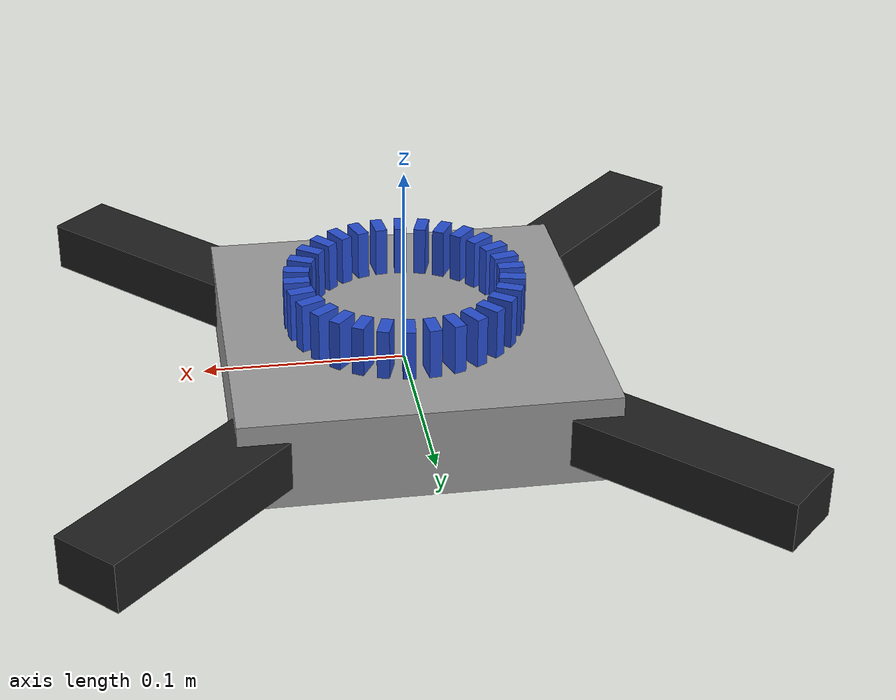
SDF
<?xml version="1.0" ?>

<sdf version="1.5">
  <model name="pendulum_quadcopter_platform">
    <link name="platform_base">
      <pose>0 0 0 0 0 0</pose>
      <inertial>
        <pose>0 0 0 0 0 0</pose>
        <mass>1.1</mass>
        <inertia>
          <ixx>0.018</ixx>
          <iyy>0.018</iyy>
          <izz>0.032</izz>
          <ixy>0</ixy>
          <ixz>0</ixz>
          <iyz>0</iyz>
        </inertia>
      </inertial>

      <collision name="body_collision">
        <pose>0 0 0 0 0 0</pose>
        <geometry>
          <box>
            <size>0.18 0.18 0.045</size>
          </box>
        </geometry>
        <surface>
          <contact>
            <ode>
              <max_vel>100.0</max_vel>
              <min_depth>0.001</min_depth>
            </ode>
          </contact>
          <friction>
            <ode>
              <mu>100000.0</mu>
              <mu2>100000.0</mu2>
            </ode>
          </friction>
        </surface>
      </collision>
      <visual name="body_visual">
        <pose>0 0 0 0 0 0</pose>
        <geometry>
          <box>
            <size>0.18 0.18 0.045</size>
          </box>
        </geometry>
        <material>
          <script>
            <name>Gazebo/Grey</name>
          </script>
        </material>
      </visual>

      <collision name="arm_positive_collision">
        <pose>0 0 0 0 0 0.7853981633974483</pose>
        <geometry>
          <box>
            <size>0.45 0.035 0.025</size>
          </box>
        </geometry>
      </collision>
      <visual name="arm_positive_visual">
        <pose>0 0 0 0 0 0.7853981633974483</pose>
        <geometry>
          <box>
            <size>0.45 0.035 0.025</size>
          </box>
        </geometry>
        <material>
          <script>
            <name>Gazebo/Black</name>
          </script>
        </material>
      </visual>

      <collision name="arm_negative_collision">
        <pose>0 0 0 0 0 -0.7853981633974483</pose>
        <geometry>
          <box>
            <size>0.45 0.035 0.025</size>
          </box>
        </geometry>
      </collision>
      <visual name="arm_negative_visual">
        <pose>0 0 0 0 0 -0.7853981633974483</pose>
        <geometry>
          <box>
            <size>0.45 0.035 0.025</size>
          </box>
        </geometry>
        <material>
          <script>
            <name>Gazebo/Black</name>
          </script>
        </material>
      </visual>

      <collision name="pendulum_cup_collision_0">
        <pose>0.053000000000000005 0.0 0.035 0 0 0.0</pose>
        <geometry>
          <box>
            <size>0.012765338149086527 0.006 0.025</size>
          </box>
        </geometry>
        <surface>
          <contact>
            <ode>
              <max_vel>100.0</max_vel>
              <min_depth>0.001</min_depth>
            </ode>
          </contact>
          <friction>
            <ode>
              <mu>10.0</mu>
              <mu2>10.0</mu2>
            </ode>
          </friction>
        </surface>
      </collision>
      <visual name="pendulum_cup_visual_0">
        <pose>0.053000000000000005 0.0 0.035 0 0 0.0</pose>
        <geometry>
          <box>
            <size>0.012765338149086527 0.006 0.025</size>
          </box>
        </geometry>
        <material>
          <script>
            <name>Gazebo/Blue</name>
          </script>
        </material>
      </visual>

      <collision name="pendulum_cup_collision_1">
        <pose>0.05184182283889171 0.011019319613341245 0.035 0 0 0.20943951023931953</pose>
        <geometry>
          <box>
            <size>0.012765338149086527 0.006 0.025</size>
          </box>
        </geometry>
        <surface>
          <contact>
            <ode>
              <max_vel>100.0</max_vel>
              <min_depth>0.001</min_depth>
            </ode>
          </contact>
          <friction>
            <ode>
              <mu>10.0</mu>
              <mu2>10.0</mu2>
            </ode>
          </friction>
        </surface>
      </collision>
      <visual name="pendulum_cup_visual_1">
        <pose>0.05184182283889171 0.011019319613341245 0.035 0 0 0.20943951023931953</pose>
        <geometry>
          <box>
            <size>0.012765338149086527 0.006 0.025</size>
          </box>
        </geometry>
        <material>
          <script>
            <name>Gazebo/Blue</name>
          </script>
        </material>
      </visual>

      <collision name="pendulum_cup_collision_2">
        <pose>0.04841790925505785 0.02155704208301741 0.035 0 0 0.41887902047863906</pose>
        <geometry>
          <box>
            <size>0.012765338149086527 0.006 0.025</size>
          </box>
        </geometry>
        <surface>
          <contact>
            <ode>
              <max_vel>100.0</max_vel>
              <min_depth>0.001</min_depth>
            </ode>
          </contact>
          <friction>
            <ode>
              <mu>10.0</mu>
              <mu2>10.0</mu2>
            </ode>
          </friction>
        </surface>
      </collision>
      <visual name="pendulum_cup_visual_2">
        <pose>0.04841790925505785 0.02155704208301741 0.035 0 0 0.41887902047863906</pose>
        <geometry>
          <box>
            <size>0.012765338149086527 0.006 0.025</size>
          </box>
        </geometry>
        <material>
          <script>
            <name>Gazebo/Blue</name>
          </script>
        </material>
      </visual>

      <collision name="pendulum_cup_collision_3">
        <pose>0.04287790070187222 0.03115261837150108 0.035 0 0 0.6283185307179586</pose>
        <geometry>
          <box>
            <size>0.012765338149086527 0.006 0.025</size>
          </box>
        </geometry>
        <surface>
          <contact>
            <ode>
              <max_vel>100.0</max_vel>
              <min_depth>0.001</min_depth>
            </ode>
          </contact>
          <friction>
            <ode>
              <mu>10.0</mu>
              <mu2>10.0</mu2>
            </ode>
          </friction>
        </surface>
      </collision>
      <visual name="pendulum_cup_visual_3">
        <pose>0.04287790070187222 0.03115261837150108 0.035 0 0 0.6283185307179586</pose>
        <geometry>
          <box>
            <size>0.012765338149086527 0.006 0.025</size>
          </box>
        </geometry>
        <material>
          <script>
            <name>Gazebo/Blue</name>
          </script>
        </material>
      </visual>

      <collision name="pendulum_cup_collision_4">
        <pose>0.03546392213701949 0.03938667575030189 0.035 0 0 0.8377580409572781</pose>
        <geometry>
          <box>
            <size>0.012765338149086527 0.006 0.025</size>
          </box>
        </geometry>
        <surface>
          <contact>
            <ode>
              <max_vel>100.0</max_vel>
              <min_depth>0.001</min_depth>
            </ode>
          </contact>
          <friction>
            <ode>
              <mu>10.0</mu>
              <mu2>10.0</mu2>
            </ode>
          </friction>
        </surface>
      </collision>
      <visual name="pendulum_cup_visual_4">
        <pose>0.03546392213701949 0.03938667575030189 0.035 0 0 0.8377580409572781</pose>
        <geometry>
          <box>
            <size>0.012765338149086527 0.006 0.025</size>
          </box>
        </geometry>
        <material>
          <script>
            <name>Gazebo/Blue</name>
          </script>
        </material>
      </visual>

      <collision name="pendulum_cup_collision_5">
        <pose>0.02650000000000001 0.04589934640057525 0.035 0 0 1.0471975511965976</pose>
        <geometry>
          <box>
            <size>0.012765338149086527 0.006 0.025</size>
          </box>
        </geometry>
        <surface>
          <contact>
            <ode>
              <max_vel>100.0</max_vel>
              <min_depth>0.001</min_depth>
            </ode>
          </contact>
          <friction>
            <ode>
              <mu>10.0</mu>
              <mu2>10.0</mu2>
            </ode>
          </friction>
        </surface>
      </collision>
      <visual name="pendulum_cup_visual_5">
        <pose>0.02650000000000001 0.04589934640057525 0.035 0 0 1.0471975511965976</pose>
        <geometry>
          <box>
            <size>0.012765338149086527 0.006 0.025</size>
          </box>
        </geometry>
        <material>
          <script>
            <name>Gazebo/Blue</name>
          </script>
        </material>
      </visual>

      <collision name="pendulum_cup_collision_6">
        <pose>0.016377900701872217 0.050405995363643145 0.035 0 0 1.2566370614359172</pose>
        <geometry>
          <box>
            <size>0.012765338149086527 0.006 0.025</size>
          </box>
        </geometry>
        <surface>
          <contact>
            <ode>
              <max_vel>100.0</max_vel>
              <min_depth>0.001</min_depth>
            </ode>
          </contact>
          <friction>
            <ode>
              <mu>10.0</mu>
              <mu2>10.0</mu2>
            </ode>
          </friction>
        </surface>
      </collision>
      <visual name="pendulum_cup_visual_6">
        <pose>0.016377900701872217 0.050405995363643145 0.035 0 0 1.2566370614359172</pose>
        <geometry>
          <box>
            <size>0.012765338149086527 0.006 0.025</size>
          </box>
        </geometry>
        <material>
          <script>
            <name>Gazebo/Blue</name>
          </script>
        </material>
      </visual>

      <collision name="pendulum_cup_collision_7">
        <pose>0.0055400085531856335 0.05270966045451849 0.035 0 0 1.4660765716752369</pose>
        <geometry>
          <box>
            <size>0.012765338149086527 0.006 0.025</size>
          </box>
        </geometry>
        <surface>
          <contact>
            <ode>
              <max_vel>100.0</max_vel>
              <min_depth>0.001</min_depth>
            </ode>
          </contact>
          <friction>
            <ode>
              <mu>10.0</mu>
              <mu2>10.0</mu2>
            </ode>
          </friction>
        </surface>
      </collision>
      <visual name="pendulum_cup_visual_7">
        <pose>0.0055400085531856335 0.05270966045451849 0.035 0 0 1.4660765716752369</pose>
        <geometry>
          <box>
            <size>0.012765338149086527 0.006 0.025</size>
          </box>
        </geometry>
        <material>
          <script>
            <name>Gazebo/Blue</name>
          </script>
        </material>
      </visual>

      <collision name="pendulum_cup_collision_8">
        <pose>-0.005540008553185627 0.0527096604545185 0.035 0 0 1.6755160819145563</pose>
        <geometry>
          <box>
            <size>0.012765338149086527 0.006 0.025</size>
          </box>
        </geometry>
        <surface>
          <contact>
            <ode>
              <max_vel>100.0</max_vel>
              <min_depth>0.001</min_depth>
            </ode>
          </contact>
          <friction>
            <ode>
              <mu>10.0</mu>
              <mu2>10.0</mu2>
            </ode>
          </friction>
        </surface>
      </collision>
      <visual name="pendulum_cup_visual_8">
        <pose>-0.005540008553185627 0.0527096604545185 0.035 0 0 1.6755160819145563</pose>
        <geometry>
          <box>
            <size>0.012765338149086527 0.006 0.025</size>
          </box>
        </geometry>
        <material>
          <script>
            <name>Gazebo/Blue</name>
          </script>
        </material>
      </visual>

      <collision name="pendulum_cup_collision_9">
        <pose>-0.01637790070187221 0.050405995363643145 0.035 0 0 1.8849555921538759</pose>
        <geometry>
          <box>
            <size>0.012765338149086527 0.006 0.025</size>
          </box>
        </geometry>
        <surface>
          <contact>
            <ode>
              <max_vel>100.0</max_vel>
              <min_depth>0.001</min_depth>
            </ode>
          </contact>
          <friction>
            <ode>
              <mu>10.0</mu>
              <mu2>10.0</mu2>
            </ode>
          </friction>
        </surface>
      </collision>
      <visual name="pendulum_cup_visual_9">
        <pose>-0.01637790070187221 0.050405995363643145 0.035 0 0 1.8849555921538759</pose>
        <geometry>
          <box>
            <size>0.012765338149086527 0.006 0.025</size>
          </box>
        </geometry>
        <material>
          <script>
            <name>Gazebo/Blue</name>
          </script>
        </material>
      </visual>

      <collision name="pendulum_cup_collision_10">
        <pose>-0.026499999999999992 0.045899346400575254 0.035 0 0 2.0943951023931953</pose>
        <geometry>
          <box>
            <size>0.012765338149086527 0.006 0.025</size>
          </box>
        </geometry>
        <surface>
          <contact>
            <ode>
              <max_vel>100.0</max_vel>
              <min_depth>0.001</min_depth>
            </ode>
          </contact>
          <friction>
            <ode>
              <mu>10.0</mu>
              <mu2>10.0</mu2>
            </ode>
          </friction>
        </surface>
      </collision>
      <visual name="pendulum_cup_visual_10">
        <pose>-0.026499999999999992 0.045899346400575254 0.035 0 0 2.0943951023931953</pose>
        <geometry>
          <box>
            <size>0.012765338149086527 0.006 0.025</size>
          </box>
        </geometry>
        <material>
          <script>
            <name>Gazebo/Blue</name>
          </script>
        </material>
      </visual>

      <collision name="pendulum_cup_collision_11">
        <pose>-0.035463922137019474 0.039386675750301914 0.035 0 0 2.3038346126325147</pose>
        <geometry>
          <box>
            <size>0.012765338149086527 0.006 0.025</size>
          </box>
        </geometry>
        <surface>
          <contact>
            <ode>
              <max_vel>100.0</max_vel>
              <min_depth>0.001</min_depth>
            </ode>
          </contact>
          <friction>
            <ode>
              <mu>10.0</mu>
              <mu2>10.0</mu2>
            </ode>
          </friction>
        </surface>
      </collision>
      <visual name="pendulum_cup_visual_11">
        <pose>-0.035463922137019474 0.039386675750301914 0.035 0 0 2.3038346126325147</pose>
        <geometry>
          <box>
            <size>0.012765338149086527 0.006 0.025</size>
          </box>
        </geometry>
        <material>
          <script>
            <name>Gazebo/Blue</name>
          </script>
        </material>
      </visual>

      <collision name="pendulum_cup_collision_12">
        <pose>-0.04287790070187222 0.031152618371501087 0.035 0 0 2.5132741228718345</pose>
        <geometry>
          <box>
            <size>0.012765338149086527 0.006 0.025</size>
          </box>
        </geometry>
        <surface>
          <contact>
            <ode>
              <max_vel>100.0</max_vel>
              <min_depth>0.001</min_depth>
            </ode>
          </contact>
          <friction>
            <ode>
              <mu>10.0</mu>
              <mu2>10.0</mu2>
            </ode>
          </friction>
        </surface>
      </collision>
      <visual name="pendulum_cup_visual_12">
        <pose>-0.04287790070187222 0.031152618371501087 0.035 0 0 2.5132741228718345</pose>
        <geometry>
          <box>
            <size>0.012765338149086527 0.006 0.025</size>
          </box>
        </geometry>
        <material>
          <script>
            <name>Gazebo/Blue</name>
          </script>
        </material>
      </visual>

      <collision name="pendulum_cup_collision_13">
        <pose>-0.04841790925505786 0.021557042083017404 0.035 0 0 2.7227136331111543</pose>
        <geometry>
          <box>
            <size>0.012765338149086527 0.006 0.025</size>
          </box>
        </geometry>
        <surface>
          <contact>
            <ode>
              <max_vel>100.0</max_vel>
              <min_depth>0.001</min_depth>
            </ode>
          </contact>
          <friction>
            <ode>
              <mu>10.0</mu>
              <mu2>10.0</mu2>
            </ode>
          </friction>
        </surface>
      </collision>
      <visual name="pendulum_cup_visual_13">
        <pose>-0.04841790925505786 0.021557042083017404 0.035 0 0 2.7227136331111543</pose>
        <geometry>
          <box>
            <size>0.012765338149086527 0.006 0.025</size>
          </box>
        </geometry>
        <material>
          <script>
            <name>Gazebo/Blue</name>
          </script>
        </material>
      </visual>

      <collision name="pendulum_cup_collision_14">
        <pose>-0.05184182283889171 0.011019319613341245 0.035 0 0 2.9321531433504737</pose>
        <geometry>
          <box>
            <size>0.012765338149086527 0.006 0.025</size>
          </box>
        </geometry>
        <surface>
          <contact>
            <ode>
              <max_vel>100.0</max_vel>
              <min_depth>0.001</min_depth>
            </ode>
          </contact>
          <friction>
            <ode>
              <mu>10.0</mu>
              <mu2>10.0</mu2>
            </ode>
          </friction>
        </surface>
      </collision>
      <visual name="pendulum_cup_visual_14">
        <pose>-0.05184182283889171 0.011019319613341245 0.035 0 0 2.9321531433504737</pose>
        <geometry>
          <box>
            <size>0.012765338149086527 0.006 0.025</size>
          </box>
        </geometry>
        <material>
          <script>
            <name>Gazebo/Blue</name>
          </script>
        </material>
      </visual>

      <collision name="pendulum_cup_collision_15">
        <pose>-0.053000000000000005 3.00273561575343e-17 0.035 0 0 3.1415926535897927</pose>
        <geometry>
          <box>
            <size>0.012765338149086527 0.006 0.025</size>
          </box>
        </geometry>
        <surface>
          <contact>
            <ode>
              <max_vel>100.0</max_vel>
              <min_depth>0.001</min_depth>
            </ode>
          </contact>
          <friction>
            <ode>
              <mu>10.0</mu>
              <mu2>10.0</mu2>
            </ode>
          </friction>
        </surface>
      </collision>
      <visual name="pendulum_cup_visual_15">
        <pose>-0.053000000000000005 3.00273561575343e-17 0.035 0 0 3.1415926535897927</pose>
        <geometry>
          <box>
            <size>0.012765338149086527 0.006 0.025</size>
          </box>
        </geometry>
        <material>
          <script>
            <name>Gazebo/Blue</name>
          </script>
        </material>
      </visual>

      <collision name="pendulum_cup_collision_16">
        <pose>-0.05184182283889171 -0.011019319613341232 0.035 0 0 3.3510321638291125</pose>
        <geometry>
          <box>
            <size>0.012765338149086527 0.006 0.025</size>
          </box>
        </geometry>
        <surface>
          <contact>
            <ode>
              <max_vel>100.0</max_vel>
              <min_depth>0.001</min_depth>
            </ode>
          </contact>
          <friction>
            <ode>
              <mu>10.0</mu>
              <mu2>10.0</mu2>
            </ode>
          </friction>
        </surface>
      </collision>
      <visual name="pendulum_cup_visual_16">
        <pose>-0.05184182283889171 -0.011019319613341232 0.035 0 0 3.3510321638291125</pose>
        <geometry>
          <box>
            <size>0.012765338149086527 0.006 0.025</size>
          </box>
        </geometry>
        <material>
          <script>
            <name>Gazebo/Blue</name>
          </script>
        </material>
      </visual>

      <collision name="pendulum_cup_collision_17">
        <pose>-0.04841790925505785 -0.021557042083017414 0.035 0 0 3.5604716740684323</pose>
        <geometry>
          <box>
            <size>0.012765338149086527 0.006 0.025</size>
          </box>
        </geometry>
        <surface>
          <contact>
            <ode>
              <max_vel>100.0</max_vel>
              <min_depth>0.001</min_depth>
            </ode>
          </contact>
          <friction>
            <ode>
              <mu>10.0</mu>
              <mu2>10.0</mu2>
            </ode>
          </friction>
        </surface>
      </collision>
      <visual name="pendulum_cup_visual_17">
        <pose>-0.04841790925505785 -0.021557042083017414 0.035 0 0 3.5604716740684323</pose>
        <geometry>
          <box>
            <size>0.012765338149086527 0.006 0.025</size>
          </box>
        </geometry>
        <material>
          <script>
            <name>Gazebo/Blue</name>
          </script>
        </material>
      </visual>

      <collision name="pendulum_cup_collision_18">
        <pose>-0.042877900701872224 -0.031152618371501073 0.035 0 0 3.7699111843077517</pose>
        <geometry>
          <box>
            <size>0.012765338149086527 0.006 0.025</size>
          </box>
        </geometry>
        <surface>
          <contact>
            <ode>
              <max_vel>100.0</max_vel>
              <min_depth>0.001</min_depth>
            </ode>
          </contact>
          <friction>
            <ode>
              <mu>10.0</mu>
              <mu2>10.0</mu2>
            </ode>
          </friction>
        </surface>
      </collision>
      <visual name="pendulum_cup_visual_18">
        <pose>-0.042877900701872224 -0.031152618371501073 0.035 0 0 3.7699111843077517</pose>
        <geometry>
          <box>
            <size>0.012765338149086527 0.006 0.025</size>
          </box>
        </geometry>
        <material>
          <script>
            <name>Gazebo/Blue</name>
          </script>
        </material>
      </visual>

      <collision name="pendulum_cup_collision_19">
        <pose>-0.0354639221370195 -0.039386675750301886 0.035 0 0 3.979350694547071</pose>
        <geometry>
          <box>
            <size>0.012765338149086527 0.006 0.025</size>
          </box>
        </geometry>
        <surface>
          <contact>
            <ode>
              <max_vel>100.0</max_vel>
              <min_depth>0.001</min_depth>
            </ode>
          </contact>
          <friction>
            <ode>
              <mu>10.0</mu>
              <mu2>10.0</mu2>
            </ode>
          </friction>
        </surface>
      </collision>
      <visual name="pendulum_cup_visual_19">
        <pose>-0.0354639221370195 -0.039386675750301886 0.035 0 0 3.979350694547071</pose>
        <geometry>
          <box>
            <size>0.012765338149086527 0.006 0.025</size>
          </box>
        </geometry>
        <material>
          <script>
            <name>Gazebo/Blue</name>
          </script>
        </material>
      </visual>

      <collision name="pendulum_cup_collision_20">
        <pose>-0.026500000000000027 -0.04589934640057524 0.035 0 0 4.1887902047863905</pose>
        <geometry>
          <box>
            <size>0.012765338149086527 0.006 0.025</size>
          </box>
        </geometry>
        <surface>
          <contact>
            <ode>
              <max_vel>100.0</max_vel>
              <min_depth>0.001</min_depth>
            </ode>
          </contact>
          <friction>
            <ode>
              <mu>10.0</mu>
              <mu2>10.0</mu2>
            </ode>
          </friction>
        </surface>
      </collision>
      <visual name="pendulum_cup_visual_20">
        <pose>-0.026500000000000027 -0.04589934640057524 0.035 0 0 4.1887902047863905</pose>
        <geometry>
          <box>
            <size>0.012765338149086527 0.006 0.025</size>
          </box>
        </geometry>
        <material>
          <script>
            <name>Gazebo/Blue</name>
          </script>
        </material>
      </visual>

      <collision name="pendulum_cup_collision_21">
        <pose>-0.01637790070187222 -0.050405995363643145 0.035 0 0 4.39822971502571</pose>
        <geometry>
          <box>
            <size>0.012765338149086527 0.006 0.025</size>
          </box>
        </geometry>
        <surface>
          <contact>
            <ode>
              <max_vel>100.0</max_vel>
              <min_depth>0.001</min_depth>
            </ode>
          </contact>
          <friction>
            <ode>
              <mu>10.0</mu>
              <mu2>10.0</mu2>
            </ode>
          </friction>
        </surface>
      </collision>
      <visual name="pendulum_cup_visual_21">
        <pose>-0.01637790070187222 -0.050405995363643145 0.035 0 0 4.39822971502571</pose>
        <geometry>
          <box>
            <size>0.012765338149086527 0.006 0.025</size>
          </box>
        </geometry>
        <material>
          <script>
            <name>Gazebo/Blue</name>
          </script>
        </material>
      </visual>

      <collision name="pendulum_cup_collision_22">
        <pose>-0.005540008553185675 -0.05270966045451849 0.035 0 0 4.607669225265029</pose>
        <geometry>
          <box>
            <size>0.012765338149086527 0.006 0.025</size>
          </box>
        </geometry>
        <surface>
          <contact>
            <ode>
              <max_vel>100.0</max_vel>
              <min_depth>0.001</min_depth>
            </ode>
          </contact>
          <friction>
            <ode>
              <mu>10.0</mu>
              <mu2>10.0</mu2>
            </ode>
          </friction>
        </surface>
      </collision>
      <visual name="pendulum_cup_visual_22">
        <pose>-0.005540008553185675 -0.05270966045451849 0.035 0 0 4.607669225265029</pose>
        <geometry>
          <box>
            <size>0.012765338149086527 0.006 0.025</size>
          </box>
        </geometry>
        <material>
          <script>
            <name>Gazebo/Blue</name>
          </script>
        </material>
      </visual>

      <collision name="pendulum_cup_collision_23">
        <pose>0.005540008553185609 -0.0527096604545185 0.035 0 0 4.817108735504349</pose>
        <geometry>
          <box>
            <size>0.012765338149086527 0.006 0.025</size>
          </box>
        </geometry>
        <surface>
          <contact>
            <ode>
              <max_vel>100.0</max_vel>
              <min_depth>0.001</min_depth>
            </ode>
          </contact>
          <friction>
            <ode>
              <mu>10.0</mu>
              <mu2>10.0</mu2>
            </ode>
          </friction>
        </surface>
      </collision>
      <visual name="pendulum_cup_visual_23">
        <pose>0.005540008553185609 -0.0527096604545185 0.035 0 0 4.817108735504349</pose>
        <geometry>
          <box>
            <size>0.012765338149086527 0.006 0.025</size>
          </box>
        </geometry>
        <material>
          <script>
            <name>Gazebo/Blue</name>
          </script>
        </material>
      </visual>

      <collision name="pendulum_cup_collision_24">
        <pose>0.016377900701872204 -0.050405995363643145 0.035 0 0 5.026548245743669</pose>
        <geometry>
          <box>
            <size>0.012765338149086527 0.006 0.025</size>
          </box>
        </geometry>
        <surface>
          <contact>
            <ode>
              <max_vel>100.0</max_vel>
              <min_depth>0.001</min_depth>
            </ode>
          </contact>
          <friction>
            <ode>
              <mu>10.0</mu>
              <mu2>10.0</mu2>
            </ode>
          </friction>
        </surface>
      </collision>
      <visual name="pendulum_cup_visual_24">
        <pose>0.016377900701872204 -0.050405995363643145 0.035 0 0 5.026548245743669</pose>
        <geometry>
          <box>
            <size>0.012765338149086527 0.006 0.025</size>
          </box>
        </geometry>
        <material>
          <script>
            <name>Gazebo/Blue</name>
          </script>
        </material>
      </visual>

      <collision name="pendulum_cup_collision_25">
        <pose>0.02650000000000001 -0.04589934640057525 0.035 0 0 5.235987755982989</pose>
        <geometry>
          <box>
            <size>0.012765338149086527 0.006 0.025</size>
          </box>
        </geometry>
        <surface>
          <contact>
            <ode>
              <max_vel>100.0</max_vel>
              <min_depth>0.001</min_depth>
            </ode>
          </contact>
          <friction>
            <ode>
              <mu>10.0</mu>
              <mu2>10.0</mu2>
            </ode>
          </friction>
        </surface>
      </collision>
      <visual name="pendulum_cup_visual_25">
        <pose>0.02650000000000001 -0.04589934640057525 0.035 0 0 5.235987755982989</pose>
        <geometry>
          <box>
            <size>0.012765338149086527 0.006 0.025</size>
          </box>
        </geometry>
        <material>
          <script>
            <name>Gazebo/Blue</name>
          </script>
        </material>
      </visual>

      <collision name="pendulum_cup_collision_26">
        <pose>0.0354639221370195 -0.039386675750301886 0.035 0 0 5.445427266222309</pose>
        <geometry>
          <box>
            <size>0.012765338149086527 0.006 0.025</size>
          </box>
        </geometry>
        <surface>
          <contact>
            <ode>
              <max_vel>100.0</max_vel>
              <min_depth>0.001</min_depth>
            </ode>
          </contact>
          <friction>
            <ode>
              <mu>10.0</mu>
              <mu2>10.0</mu2>
            </ode>
          </friction>
        </surface>
      </collision>
      <visual name="pendulum_cup_visual_26">
        <pose>0.0354639221370195 -0.039386675750301886 0.035 0 0 5.445427266222309</pose>
        <geometry>
          <box>
            <size>0.012765338149086527 0.006 0.025</size>
          </box>
        </geometry>
        <material>
          <script>
            <name>Gazebo/Blue</name>
          </script>
        </material>
      </visual>

      <collision name="pendulum_cup_collision_27">
        <pose>0.04287790070187222 -0.03115261837150109 0.035 0 0 5.654866776461628</pose>
        <geometry>
          <box>
            <size>0.012765338149086527 0.006 0.025</size>
          </box>
        </geometry>
        <surface>
          <contact>
            <ode>
              <max_vel>100.0</max_vel>
              <min_depth>0.001</min_depth>
            </ode>
          </contact>
          <friction>
            <ode>
              <mu>10.0</mu>
              <mu2>10.0</mu2>
            </ode>
          </friction>
        </surface>
      </collision>
      <visual name="pendulum_cup_visual_27">
        <pose>0.04287790070187222 -0.03115261837150109 0.035 0 0 5.654866776461628</pose>
        <geometry>
          <box>
            <size>0.012765338149086527 0.006 0.025</size>
          </box>
        </geometry>
        <material>
          <script>
            <name>Gazebo/Blue</name>
          </script>
        </material>
      </visual>

      <collision name="pendulum_cup_collision_28">
        <pose>0.04841790925505786 -0.02155704208301741 0.035 0 0 5.8643062867009474</pose>
        <geometry>
          <box>
            <size>0.012765338149086527 0.006 0.025</size>
          </box>
        </geometry>
        <surface>
          <contact>
            <ode>
              <max_vel>100.0</max_vel>
              <min_depth>0.001</min_depth>
            </ode>
          </contact>
          <friction>
            <ode>
              <mu>10.0</mu>
              <mu2>10.0</mu2>
            </ode>
          </friction>
        </surface>
      </collision>
      <visual name="pendulum_cup_visual_28">
        <pose>0.04841790925505786 -0.02155704208301741 0.035 0 0 5.8643062867009474</pose>
        <geometry>
          <box>
            <size>0.012765338149086527 0.006 0.025</size>
          </box>
        </geometry>
        <material>
          <script>
            <name>Gazebo/Blue</name>
          </script>
        </material>
      </visual>

      <collision name="pendulum_cup_collision_29">
        <pose>0.05184182283889171 -0.011019319613341226 0.035 0 0 6.073745796940267</pose>
        <geometry>
          <box>
            <size>0.012765338149086527 0.006 0.025</size>
          </box>
        </geometry>
        <surface>
          <contact>
            <ode>
              <max_vel>100.0</max_vel>
              <min_depth>0.001</min_depth>
            </ode>
          </contact>
          <friction>
            <ode>
              <mu>10.0</mu>
              <mu2>10.0</mu2>
            </ode>
          </friction>
        </surface>
      </collision>
      <visual name="pendulum_cup_visual_29">
        <pose>0.05184182283889171 -0.011019319613341226 0.035 0 0 6.073745796940267</pose>
        <geometry>
          <box>
            <size>0.012765338149086527 0.006 0.025</size>
          </box>
        </geometry>
        <material>
          <script>
            <name>Gazebo/Blue</name>
          </script>
        </material>
      </visual>

    </link>

    <link name="imu_link">
      <inertial>
        <pose>0 0 0 0 0 0</pose>
        <mass>0.15</mass>
        <inertia>
          <ixx>0.00001</ixx>
          <ixy>0</ixy>
          <ixz>0</ixz>
          <iyy>0.00002</iyy>
          <iyz>0</iyz>
          <izz>0.00002</izz>
        </inertia>
      </inertial>
      <sensor name="imu_sensor" type="imu">
        <pose>0 0 0 3.141593 0 0</pose>
        <always_on>1</always_on>
        <update_rate>1000.0</update_rate>
        <topic>__default_topic__</topic>
      </sensor>
    </link>

    <joint name="imu_joint" type="fixed">
      <parent>platform_base</parent>
      <child>imu_link</child>
    </joint>
  </model>
</sdf>
